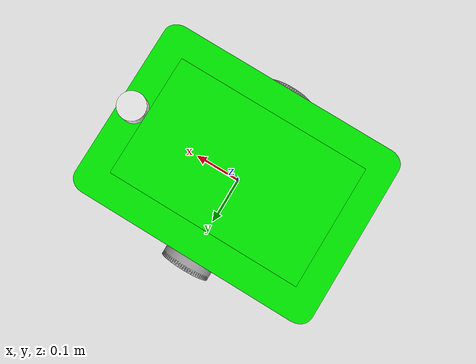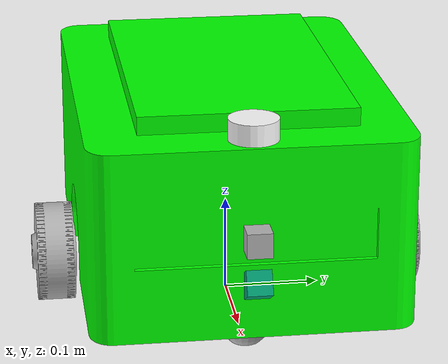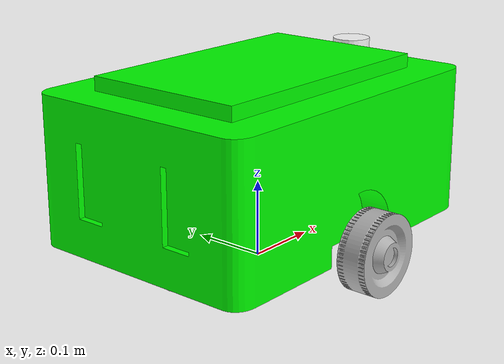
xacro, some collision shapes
<?xml version="1.0"?>
<robot name="my_robot" xmlns:xacro="http://ros.org/wiki/xacro" >

<xacro:include filename="$(find turtlebot5)/urdf/definition.xacro"/>
<xacro:include filename="$(find turtlebot5)/urdf/mobile_base.xacro"/>
<xacro:include filename="$(find turtlebot5)/urdf/mobile_base_gazebo.xacro"/>

</robot>

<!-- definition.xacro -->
<robot xmlns:xacro="http://ros.org/wiki/xacro" >

    <material name="grey">
    <color rgba="0.7 0.7 0.7 1"/>
</material>
<material name="green">
    <color rgba="0.0 1 0.0 1"/>
</material>
<material name="white">
    <color rgba="1 1 1 1"/>
</material>

<xacro:macro name="box_inertia" params="m l w h xyz rpy">
 <inertial>
    <origin xyz="${xyz}" rpy="${rpy}"/>
    <mass value="${m}"/>
    <inertia ixx="${ (m/12)*(h*h + l*l) }" ixy="0.0" ixz="0.0" iyy="${(m/12)*(w*w + l*l)}" iyz="0.0" izz="${(m/12) * (w*w + h*h)}"/>
 </inertial>
</xacro:macro>

<xacro:macro name="cylinder_inertia" params="m r h xyz rpy">
 <inertial>
    <origin xyz="${xyz}" rpy="${rpy}"/>
    <mass value="${m}"/>
    <inertia ixx="${ (m/12)*(3*r*r + h*h) }" ixy="0.0" ixz="0.0" iyy="${ (m/12)*(3*r*r + h*h) }" iyz="0.0" izz="${(m/2) * (r*r)}"/>
 </inertial>
</xacro:macro>

<xacro:macro name="sphere_inertia" params="m r xyz rpy">
 <inertial>
    <origin xyz="${xyz}" rpy="${rpy}"/>
    <mass value="${m}"/>
    <inertia ixx="${ (2/5)*m*r*r }" ixy="0.0" ixz="0.0" iyy="${ (2/5)*m*r*r }" iyz="0.0" izz="${ (2/5)*m*r*r }"/>
 </inertial>
</xacro:macro>

<xacro:macro name="transmission_block" params="joint_name">
  <transmission name="tran1">
    <type>transmission_interface/SimpleTransmission</type>
    <joint name="${joint_name}">
      <hardwareInterface>
        hardware_interface/PositionJointInterface
      </hardwareInterface>
    </joint>
    <actuator name="motor1">
      <mechanicalReduction>1</mechanicalReduction>
    </actuator>
  </transmission>
</xacro:macro>

</robot>

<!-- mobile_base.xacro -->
<robot xmlns:xacro="http://ros.org/wiki/xacro" >

<!-- body value -->
<xacro:property name="base_length" value="0.45" />
<xacro:property name="base_width" value="0.32" />
<xacro:property name="base_hight" value="0.19" />

<!-- Wheel values -->
<xacro:property name="wheel_r" value="0.051" />
<xacro:property name="wheel_length" value="0.046" />

<!-- Lidar values  -->
<xacro:property name="lidar_r" value="0.025" />
<xacro:property name="lidar_l" value="0.0215" />

<link name="base_footprint">
</link>

<link name="base_link">
  <visual>
    <geometry>
      <mesh filename="package://turtlebot5/meshes/body.stl"/>
    </geometry>
      <origin xyz="0.0 0.0 ${base_hight/2.0}" rpy="0.0 0.0 0.0"/>
      <material name="green"/>
  </visual>
  <collision>
    <geometry>
       <box size="${base_length} ${base_width} ${base_hight}"/>
    </geometry>
      <origin xyz="0.0 0.0 ${base_hight/2.0}" rpy="0.0 0.0 0.0"/>
  </collision>

  <xacro:box_inertia m="5.0" l="${2*base_length}" w="${2*base_width}" h="${2*base_hight}" xyz="0.0 0.0 ${base_hight/2.0}" rpy="0.0 0.0 0.0"/>
</link>

<link name="platform_link">
  <visual>
    <geometry>
        <mesh filename="package://turtlebot5/meshes/plateform.stl"/>
    </geometry>
      <origin xyz="0.0 0.0 0" rpy="0.0 0.0 0.0"/>
      <material name="green"/>
  </visual>
  <collision>
    <geometry>
      <box size="0.35 0.22 0.026"/>
    </geometry>
      <origin xyz="0.0 0.0 0" rpy="0.0 0.0 0.0"/>
  </collision>

  <xacro:box_inertia m="5.0" l="0.35" w="0.22" h="0.026" xyz="0.0 0.0 0" rpy="0.0 0.0 0.0"/>
</link>

<link name="platform_lift_link">
  <visual>
    <origin xyz="0.0 0.0 0.0" rpy="0 0.0 0.0"/>
    <geometry>
        <mesh filename="package://turtlebot5/meshes/inner.stl"/>
    </geometry>
    <material name="grey"/>
  </visual>
  <collision>
      <origin xyz="0.0 0.0 0.0" rpy="${pi / 2.0} 0.0 0.0"/>
    <geometry>
        <cylinder radius="${0.05}" length="${0.18}"/>
    </geometry>
    <material name="red"/>
  </collision>
  <xacro:cylinder_inertia m="1.0" r="${2*wheel_r}" h="${2*wheel_length}" xyz="0.0 0.0 0.0" rpy="${pi / 2.0} 0.0 0.0" />
</link>

<link name="lidar_link">
    <visual name="">
        <origin xyz="0.0 0.0 0.0" rpy="0.0 0.0 0.0"/>
        <geometry>
            <mesh filename="package://turtlebot5/meshes/lds.stl" scale="0.0005 0.0005 0.0005"/>
        </geometry>
        <material name="white" />
    </visual>
    <collision>
          <origin xyz="0.0 0.0 0.0" rpy="0.0 0.0 0.0"/>
        <geometry>
            <cylinder radius="${lidar_r}" length="${lidar_l}"/>
        </geometry>
    </collision>
</link>

<link name="left_wheel_link">
  <visual>
    <origin xyz="0.0 0.0 0.0" rpy="${pi / 2.0} 0.0 0.0"/>
    <geometry>
        <mesh filename="package://turtlebot5/meshes/wheelR.stl"/>
    </geometry>
    <material name="grey"/>
  </visual>
  <collision>
      <origin xyz="0.0 0.0 0.0" rpy="${pi / 2.0} 0.0 0.0"/>
    <geometry>
        <cylinder radius="${wheel_r}" length="${wheel_length}"/>
    </geometry>
  </collision>
  <xacro:cylinder_inertia m="1.0" r="${2*wheel_r}" h="${2*wheel_length}" xyz="0.0 0.0 0.0" rpy="${pi / 2.0} 0.0 0.0" />
</link>

<link name="right_wheel_link">
  <visual>
      <origin xyz="0.0 0.0 0.0" rpy="${pi / 2.0} 0.0 0.0"/>
      <geometry>
          <mesh filename="package://turtlebot5/meshes/wheelL.stl"/>
      </geometry>
      <material name="grey"/>
  </visual>
  <collision>
      <origin xyz="0.0 0.0 0.0" rpy="${pi / 2.0} 0.0 0.0"/>
      <geometry>
          <cylinder radius="${wheel_r}" length="${wheel_length}"/>
      </geometry>
  </collision>
  <xacro:cylinder_inertia m="1.0" r="${2*wheel_r}" h="${2*wheel_length}" xyz="0.0 0.0 0.0" rpy="${pi / 2.0} 0.0 0.0" />
</link>

<link name="caster_link_f">
  <visual>
      <origin xyz="0.0 0.0 0.0" rpy="0.0 0.0 0.0"/>
      <geometry>
          <sphere radius="${wheel_r / 2.0}"/>
      </geometry>
      <material name="grey"/>
  </visual>
  <collision>
      <origin xyz="0.0 0.0 0.0" rpy="0.0 0.0 0.0"/>
      <geometry>
          <sphere radius="${wheel_r / 2.0}"/>
      </geometry>
  </collision>
  <xacro:sphere_inertia m="0.5" r="${2*wheel_r / 2.0}" xyz="0.0 0.0 0.0" rpy="0.0 0.0 0.0" />
</link>

<link name="caster_link_b">
  <visual>
      <origin xyz="0.0 0.0 0.0" rpy="0.0 0.0 0.0"/>
      <geometry>
          <sphere radius="${wheel_r / 2.0}"/>
      </geometry>
      <material name="grey"/>
  </visual>
  <collision>
      <origin xyz="0.0 0.0 0.0" rpy="0.0 0.0 0.0"/>
      <geometry>
          <sphere radius="${wheel_r / 2.0}"/>
      </geometry>
  </collision>
  <xacro:sphere_inertia m="0.5" r="${2*wheel_r / 2.0}" xyz="0.0 0.0 0.0" rpy="0.0 0.0 0.0" />
</link>

<link name="camera_link">
  <visual>
   <origin xyz="0.0 0.0 0.0" rpy="1.57 0 1.57"/>
    <geometry>
      <box size="0.025 0.025 0.025"/>
    </geometry>
    <material name="grey"/>
  </visual>
</link>
<link name="camera_link_2">
    <visual>
        <origin xyz="0 0 0" rpy="1.57 0 1.57"/>
        <geometry>
            <box size="0.025 0.025 0.025"/>
        </geometry>
    </visual>
    <collision>
        <origin xyz="0 0 0" rpy="0 0 0"/>
        <geometry>
            <box size="0.025 0.025 0.025"/>
        </geometry>
    </collision>
</link>
<!-- #####################################################   JOINTS   ###################################################### -->

<joint name="base_joint" type="fixed">
    <origin xyz="0.0 0.0 ${wheel_r}" rpy="0.0 0.0 0.0"/>
    <parent link="base_footprint"/>
    <child link="base_link"/>
</joint>

<joint name="platform_joint" type="fixed">
    <origin xyz="0.0 0.0 ${base_hight}" rpy="0.0 0.0 0.0"/>
    <parent link="platform_lift_link"/>
    <child link="platform_link"/>
</joint>

<joint name="platform_lift_joint" type="prismatic">
    <origin xyz="0.0005 0.0 0.0" rpy="0.0 0.0 0.0"/>
    <parent link="base_link"/>
    <child link="platform_lift_link"/>
    <axis xyz="0 0 1"/> <!-- Movement along the Z-axis -->
     <limit lower="0.0" upper="${(base_hight * 0.87)}" effort="50" velocity="1.0"/> <!-- Motion range and limits -->
</joint>

<joint name="base_lidar_joint" type="fixed">
    <parent link="base_link"/>
    <child link="lidar_link"/>
    <origin xyz="${(base_length / 2)- lidar_r} 0.0 ${(base_hight + lidar_l / 2) - 0.005}" rpy="0.0 0.0 0.0"/>
</joint>

<joint name="left_wheel_joint" type="continuous">
    <parent link="base_link"/>
    <child link="left_wheel_link"/>
    <origin xyz="0 ${(base_width + wheel_length)/2.0} 0.0" rpy="0.0 0.0 0.0"/>
    <axis xyz="0 1 0.0"/>
</joint>

<joint name="right_wheel_joint" type="continuous">
    <parent link="base_link"/>
    <child link="right_wheel_link"/>
    <origin xyz=" 0 ${-(base_width + wheel_length)/2.0} 0.0" rpy="0.0 0.0 0.0"/>
    <axis xyz="0 1 0.0"/>
</joint>

<joint name="caster_joint_f" type="fixed">
    <origin xyz="${base_length/3.0} 0.0 ${-(wheel_r / 2.0)}" rpy="0.0 0.0 0.0"/>
    <parent link="base_link"/>
    <child link="caster_link_f"/>
</joint>

<joint name="caster_joint_b" type="fixed">
    <origin xyz="${-base_length/3.0} 0.0 ${-(wheel_r / 2.0)}" rpy="0.0 0.0 0.0"/>
    <parent link="base_link"/>
    <child link="caster_link_b"/>
</joint>

<joint name="camera_joint" type="fixed">
  <parent link="base_link"/>
  <child link="camera_link"/>
  <origin xyz="${(base_length/2) + 0.009} 0 0.094" rpy="0 0 0"/>
</joint>

<joint name="camera_joint_2" type="fixed">
  <parent link="base_link"/>
  <child link="camera_link_2"/>
  <origin xyz="${(base_length/2) + 0.009} 0 0.05" rpy="0 1.05 0"/> <!-- Adjusted rpy to face the ground -->
</joint>

</robot>
